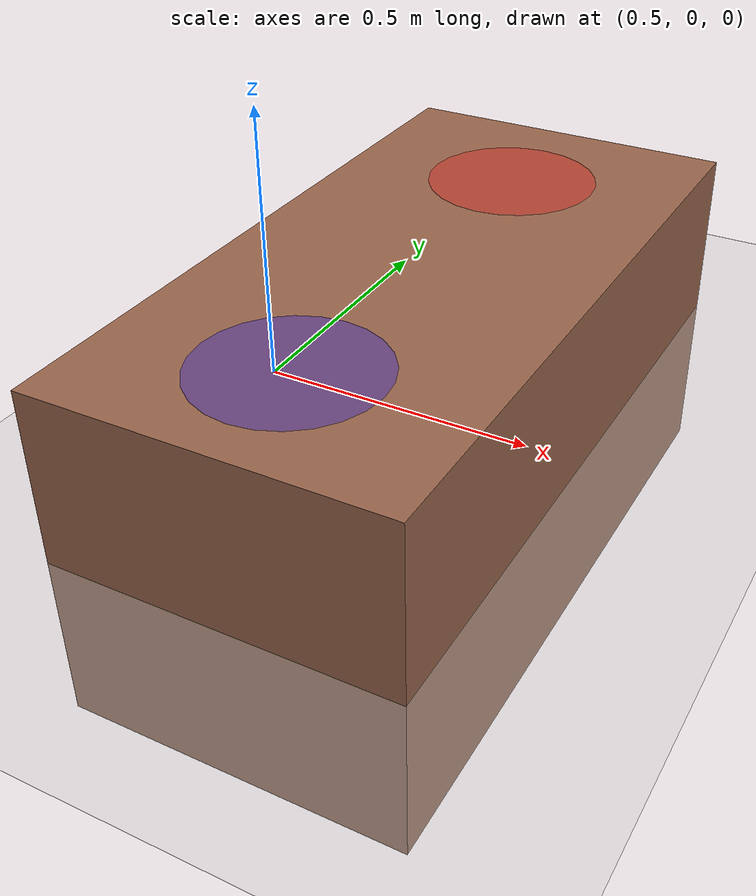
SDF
<sdf version="1.6">
  <world name="lab">

    <plugin name="gazebo_ros_init" filename="libgazebo_ros_init.so"/>
    <plugin name="gazebo_ros_factory" filename="libgazebo_ros_factory.so"/>
    <plugin name="gazebo_ros_state" filename="libgazebo_ros_state.so">
      <update_rate>10.0</update_rate>
    </plugin>

    <plugin name="grasp_welder" filename="libgrasp_welder.so">
      <ros>
        <namespace>/ur_lab</namespace>
      </ros>
    </plugin>

    <!-- stiffer constraint solving => stable pinched grasps -->
    <physics type="ode">
      <max_step_size>0.001</max_step_size>
      <real_time_factor>1.0</real_time_factor>
      <ode>
        <solver>
          <iterations>150</iterations>
          <sor>1.4</sor>
        </solver>
        <constraints>
          <cfm>0.00001</cfm>
          <erp>0.2</erp>
        </constraints>
      </ode>
    </physics>

    <ambient_light>
      <direction>-0.5 -0.5 -0.6</direction>
      <intensity>0.4</intensity>
    </ambient_light>

    <sun>
      <pose>0 0 0 0 0 0</pose>
      <type>directional</type>
      <diffuse>0.8 0.8 0.8 1</diffuse>
      <specular>0.4 0.4 0.4 1</specular>
    </sun>

    <sky>
      <type>sun</type>
      <top_color>0.8 0.8 0.9</top_color>
      <bottom_color>0.2 0.2 0.3</bottom_color>
      <sun>
        <pose>0 0 0 0 0 0</pose>
        <diffuse>0.8 0.8 0.8 1</diffuse>
      </sun>
    </sky>

    <include>
      <uri>model://sun</uri>
    </include>

    <include>
      <uri>model://ground_plane</uri>
    </include>

    <model name="table_mark_red">
        <static>true</static>
          <pose>0.8 0.35 0.3 0 0 0</pose>
        <link name="link">

       <visual name="visual">
       <geometry>
        <cylinder>
          <radius>0.15</radius>
          <length>0.001</length>
        </cylinder>
       </geometry>

       <material>
        <ambient>1 0 0 0.3</ambient>
        <diffuse>1 0 0 0.3</diffuse>
       </material>
       </visual>

       </link>
    </model>

    <model name="table_mark_blue">
     <static>true</static>
     <pose>0.8 -0.38 0.3 0 0 0</pose>

     <link name="link">

       <visual name="visual">
      <geometry>
        <cylinder>
          <radius>0.15</radius>
          <length>0.001</length>
        </cylinder>
      </geometry>

      <material>
        <ambient>0 0 1 0.3</ambient>
        <diffuse>0 0 1 0.3</diffuse>
      </material>
    </visual>

  </link>
</model>

    <!-- Table -->
    <model name="table">
      <static>true</static>
      <pose>0.8 0 0.0 0 0 0</pose>
      <link name="link">
        <collision name="collision">
          <geometry>
            <box><size>0.8 1.2 0.6</size></box>
          </geometry>
        </collision>
        <visual name="visual">
          <geometry>
            <box><size>0.6 1.2 0.6</size></box>
          </geometry>
          <material>
            <ambient>0.6 0.4 0.3 1</ambient>
            <diffuse>0.6 0.4 0.3 1</diffuse>
          </material>
        </visual>
      </link>
    </model>

    <!-- Loose cubes removed: pick_cube spawns its own single cube -->

  </world>
</sdf>
